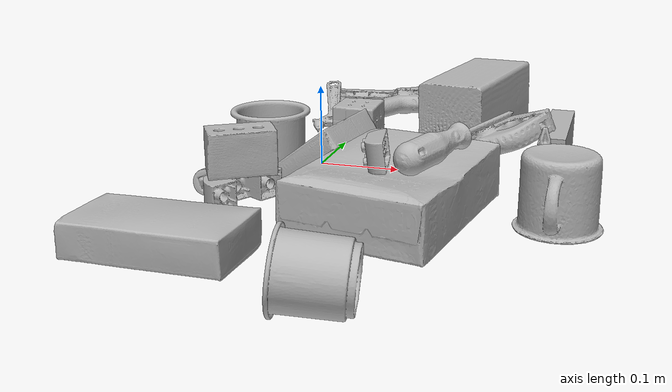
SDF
<sdf version="1.4">
  <world name="default">
    <light name="light1" type="point">
      <pose>0 0 1 0 0 0</pose>
      <diffuse>3 3 3 1</diffuse>
      <specular>3 3 3 1</specular>
    </light>
    <light name="light2" type="point">
      <pose>0 0.5 2 0 0 0</pose>
      <diffuse>1 1 1 1</diffuse>
      <specular>1 1 1 1</specular>
    </light>
    <light name="light3" type="point">
      <pose>0 0.5 2 0 0 0</pose>
      <diffuse>3 3 3 1</diffuse>
      <specular>3 3 3 1</specular>
    </light>
    <scene>
      <ambient>0.7 0.7 0.7</ambient>
    </scene>
    <model name="box21">
      <link name="link_box21">
        <collision name="default">
          <geometry>
            <mesh>
              <uri>model://cracker_box/collision_meshes/collision.obj</uri>
              <scale>1.0 1.0 1.0</scale>
            </mesh>
          </geometry>
          <surface>
            <friction>
              <ode>
                <mu>0.5</mu>
                <mu2>0.5</mu2>
              </ode>
            </friction>
          <contact>
        <ode>
            <max_vel>0</max_vel>
            <min_depth>0.0001</min_depth>
            <kp>1e8</kp>
        </ode>
    </contact></surface>
        </collision>
        <visual name="default">
          <geometry>
            <mesh>
              <uri>model://cracker_box/visual_meshes/visual.dae</uri>
              <scale>1.0 1.0 1.0</scale>
            </mesh>
          </geometry>
        </visual>
        <inertial>
          <mass>1.391977071762085</mass>
          <pose>0.0009464159375056624 0.0002543424488976598 -0.0017029533628374338 -0.000316207597302205 -0.011106489600460226 0.002546794768991959</pose>
          <inertia>
            <ixx>0.0035405685</ixx>
            <iyy>0.0058461735</iyy>
            <izz>0.008343027</izz>
            <ixy>0</ixy>
            <ixz>0</ixz>
            <iyz>0</iyz>
          </inertia>
        </inertial>
      </link>
      <pose>0.13931044936180115 -0.1717512309551239 0.036481823772192 -0.011790720072276155 -0.007366500454985928 1.3838491683076666</pose>
    </model>
    <model name="box22">
      <link name="link_box22">
        <collision name="default">
          <geometry>
            <mesh>
              <uri>model://pudding_box/collision_meshes/collision.obj</uri>
              <scale>1.0 1.0 1.0</scale>
            </mesh>
          </geometry>
          <surface>
            <friction>
              <ode>
                <mu>0.5</mu>
                <mu2>0.5</mu2>
              </ode>
            </friction>
          <contact>
        <ode>
            <max_vel>0</max_vel>
            <min_depth>0.0001</min_depth>
            <kp>1e8</kp>
        </ode>
    </contact></surface>
        </collision>
        <visual name="default">
          <geometry>
            <mesh>
              <uri>model://pudding_box/visual_meshes/visual.dae</uri>
              <scale>1.0 1.0 1.0</scale>
            </mesh>
          </geometry>
        </visual>
        <inertial>
          <mass>0.30066633224487305</mass>
          <pose>0.0004894821904599667 0.0008067885646596551 -0.0005188827635720372 0.005213102250656644 -0.006603798267444238 0.020079828885202117</pose>
          <inertia>
            <ixx>0.0003398878</ixx>
            <iyy>0.00022867892</iyy>
            <izz>0.00050193316</izz>
            <ixy>0</ixy>
            <ixz>0</ixz>
            <iyz>0</iyz>
          </inertia>
        </inertial>
      </link>
      <pose>0.029164502397179604 -0.06491947174072266 0.03965303674340248 -0.0031040134765311328 -0.6350196208298066 -0.16355487293340515</pose>
    </model>
    <model name="box23">
      <link name="link_box23">
        <collision name="default">
          <geometry>
            <mesh>
              <uri>model://rubiks_cube/collision_meshes/collision.obj</uri>
              <scale>1.0 1.0 1.0</scale>
            </mesh>
          </geometry>
          <surface>
            <friction>
              <ode>
                <mu>0.5</mu>
                <mu2>0.5</mu2>
              </ode>
            </friction>
          <contact>
        <ode>
            <max_vel>0</max_vel>
            <min_depth>0.0001</min_depth>
            <kp>1e8</kp>
        </ode>
    </contact></surface>
        </collision>
        <visual name="default">
          <geometry>
            <mesh>
              <uri>model://rubiks_cube/visual_meshes/visual.dae</uri>
              <scale>1.0 1.0 1.0</scale>
            </mesh>
          </geometry>
        </visual>
        <inertial>
          <mass>0.26383036375045776</mass>
          <pose>2.6721041649580002e-05 5.256966323941015e-05 -7.264316082000732e-06 -0.054671492146459166 -0.0981403456898064 -0.03445706250673431</pose>
          <inertia>
            <ixx>0.000145784</ixx>
            <iyy>0.00014510413</iyy>
            <izz>0.00014699204</izz>
            <ixy>0</ixy>
            <ixz>0</ixz>
            <iyz>0</iyz>
          </inertia>
        </inertial>
      </link>
      <pose>0.02013634517788887 0.09658496826887131 0.0292618740350008 1.2514847017519408 1.5373780089115743 1.2628266864931124</pose>
    </model>
    <model name="cup1">
      <link name="link_cup1">
        <collision name="default">
          <geometry>
            <mesh>
              <uri>model://i_cups/collision_meshes/collision.obj</uri>
              <scale>1.0 1.0 1.0</scale>
            </mesh>
          </geometry>
          <surface>
            <friction>
              <ode>
                <mu>0.5</mu>
                <mu2>0.5</mu2>
              </ode>
            </friction>
          <contact>
        <ode>
            <max_vel>0</max_vel>
            <min_depth>0.0001</min_depth>
            <kp>1e8</kp>
        </ode>
    </contact></surface>
        </collision>
        <visual name="default">
          <geometry>
            <mesh>
              <uri>model://i_cups/visual_meshes/visual.dae</uri>
              <scale>1.0 1.0 1.0</scale>
            </mesh>
          </geometry>
        </visual>
        <inertial>
          <mass>0.07817669957876205</mass>
          <pose>0.00011240140884183347 0.00016797371790744364 -0.0008579030982218683 -0.02898336998566683 -0.039872909189422004 -0.34590568894983</pose>
          <inertia>
            <ixx>0.000108236774</ixx>
            <iyy>0.000109190434</iyy>
            <izz>0.00012097212</izz>
            <ixy>0</ixy>
            <ixz>0</ixz>
            <iyz>0</iyz>
          </inertia>
        </inertial>
      </link>
      <pose>-0.0545831173658371 -0.0332334041595459 0.0377768836915493 0.0017343742389609876 -0.0064995050094820836 0.4574599276043763</pose>
    </model>
    <model name="cup2">
      <link name="link_cup2">
        <collision name="default">
          <geometry>
            <mesh>
              <uri>model://f_cups/collision_meshes/collision.obj</uri>
              <scale>1.0 1.0 1.0</scale>
            </mesh>
          </geometry>
          <surface>
            <friction>
              <ode>
                <mu>0.5</mu>
                <mu2>0.5</mu2>
              </ode>
            </friction>
          <contact>
        <ode>
            <max_vel>0</max_vel>
            <min_depth>0.0001</min_depth>
            <kp>1e8</kp>
        </ode>
    </contact></surface>
        </collision>
        <visual name="default">
          <geometry>
            <mesh>
              <uri>model://f_cups/visual_meshes/visual.dae</uri>
              <scale>1.0 1.0 1.0</scale>
            </mesh>
          </geometry>
        </visual>
        <inertial>
          <mass>0.06179655343294144</mass>
          <pose>-0.003171469084918499 -0.0006240077782422304 -0.0036555363330990076 0.786228783809594 -0.26079147583364887 -0.18237327348602217</pose>
          <inertia>
            <ixx>5.8090412e-05</ixx>
            <iyy>6.0937502e-05</iyy>
            <izz>6.3437656e-05</izz>
            <ixy>0</ixy>
            <ixz>0</ixz>
            <iyz>0</iyz>
          </inertia>
        </inertial>
      </link>
      <pose>0.13493002951145172 -0.4064180552959442 0.037275124341249466 -1.2232358676889343 -1.3051812873745081 1.4319875303587484</pose>
    </model>
    <model name="box11">
      <link name="link_box11">
        <collision name="default">
          <geometry>
            <mesh>
              <uri>model://jenga/collision_meshes/collision.obj</uri>
              <scale>1.0 1.0 1.0</scale>
            </mesh>
          </geometry>
          <surface>
            <friction>
              <ode>
                <mu>0.5</mu>
                <mu2>0.5</mu2>
              </ode>
            </friction>
          <contact>
        <ode>
            <max_vel>0</max_vel>
            <min_depth>0.0001</min_depth>
            <kp>1e8</kp>
        </ode>
    </contact></surface>
        </collision>
        <visual name="default">
          <geometry>
            <mesh>
              <uri>model://jenga/visual_meshes/visual.dae</uri>
              <scale>1.0 1.0 1.0</scale>
            </mesh>
          </geometry>
        </visual>
        <inertial>
          <mass>0.2841220796108246</mass>
          <pose>-2.5028555228345795e-07 -0.00010250010382151231 -4.0923401684267446e-05 0.0 -7.34215461761844e-07 0.0</pose>
          <inertia>
            <ixx>7.8623474e-05</ixx>
            <iyy>0.00053275056</iyy>
            <izz>0.0005687565</izz>
            <ixy>0</ixy>
            <ixz>0</ixz>
            <iyz>0</iyz>
          </inertia>
        </inertial>
      </link>
      <pose>0.28496620059013367 0.0952283963561058 0.02470199018716812 1.5774851514523212 1.5317706841004541e-06 1.5707927946080449</pose>
    </model>
    <model name="box12">
      <link name="link_box12">
        <collision name="default">
          <geometry>
            <mesh>
              <uri>model://wood_block/collision_meshes/collision.obj</uri>
              <scale>1.0 1.0 1.0</scale>
            </mesh>
          </geometry>
          <surface>
            <friction>
              <ode>
                <mu>0.5</mu>
                <mu2>0.5</mu2>
              </ode>
            </friction>
          <contact>
        <ode>
            <max_vel>0</max_vel>
            <min_depth>0.0001</min_depth>
            <kp>1e8</kp>
        </ode>
    </contact></surface>
        </collision>
        <visual name="default">
          <geometry>
            <mesh>
              <uri>model://wood_block/visual_meshes/visual.dae</uri>
              <scale>1.0 1.0 1.0</scale>
            </mesh>
          </geometry>
        </visual>
        <inertial>
          <mass>1.792885661125183</mass>
          <pose>-5.813315510749817e-06 -0.0005708095268346369 0.0002640858292579651 -0.0522099864925601 -0.005192695938411627 -0.006861379223067069</pose>
          <inertia>
            <ixx>0.0023991528</ixx>
            <iyy>0.007578924</iyy>
            <izz>0.007550574</izz>
            <ixy>0</ixy>
            <ixz>0</ixz>
            <iyz>0</iyz>
          </inertia>
        </inertial>
      </link>
      <pose>0.16199059784412384 0.20167571306228638 0.044277388602495193 -1.5548836392393572 0.004819292238170427 -1.7624662718872368</pose>
    </model>
    <model name="box13">
      <link name="link_box13">
        <collision name="default">
          <geometry>
            <mesh>
              <uri>model://sugar_box/collision_meshes/collision.obj</uri>
              <scale>1.0 1.0 1.0</scale>
            </mesh>
          </geometry>
          <surface>
            <friction>
              <ode>
                <mu>0.5</mu>
                <mu2>0.5</mu2>
              </ode>
            </friction>
          <contact>
        <ode>
            <max_vel>0</max_vel>
            <min_depth>0.0001</min_depth>
            <kp>1e8</kp>
        </ode>
    </contact></surface>
        </collision>
        <visual name="default">
          <geometry>
            <mesh>
              <uri>model://sugar_box/visual_meshes/visual.dae</uri>
              <scale>1.0 1.0 1.0</scale>
            </mesh>
          </geometry>
        </visual>
        <inertial>
          <mass>0.8825364708900452</mass>
          <pose>0.0010343727190047503 3.8491099985549226e-05 -0.00036364805418998003 -0.0004046260965456432 0.0010506635219437153 0.002615379021860657</pose>
          <inertia>
            <ixx>0.0007353271</ixx>
            <iyy>0.0023767278</iyy>
            <izz>0.002845227</izz>
            <ixy>0</ixy>
            <ixz>0</ixz>
            <iyz>0</iyz>
          </inertia>
        </inertial>
      </link>
      <pose>-0.05059383064508438 -0.32763177156448364 0.022798605263233185 0.0007759716208385282 -0.023433479439042382 -0.049515013452750056</pose>
    </model>
    <model name="box14">
      <link name="link_box14">
        <collision name="default">
          <geometry>
            <mesh>
              <uri>model://gelatin_box/collision_meshes/collision.obj</uri>
              <scale>1.0 1.0 1.0</scale>
            </mesh>
          </geometry>
          <surface>
            <friction>
              <ode>
                <mu>0.5</mu>
                <mu2>0.5</mu2>
              </ode>
            </friction>
          <contact>
        <ode>
            <max_vel>0</max_vel>
            <min_depth>0.0001</min_depth>
            <kp>1e8</kp>
        </ode>
    </contact></surface>
        </collision>
        <visual name="default">
          <geometry>
            <mesh>
              <uri>model://gelatin_box/visual_meshes/visual.dae</uri>
              <scale>1.0 1.0 1.0</scale>
            </mesh>
          </geometry>
        </visual>
        <inertial>
          <mass>0.13771659135818481</mass>
          <pose>0.0004319618456065655 0.00011156871914863586 -0.0003640321083366871 -0.0010503722043797578 -0.004755819155943452 0.016440555746729004</pose>
          <inertia>
            <ixx>9.721668e-05</ixx>
            <iyy>6.944137e-05</iyy>
            <izz>0.00014798543</izz>
            <ixy>0</ixy>
            <ixz>0</ixz>
            <iyz>0</iyz>
          </inertia>
        </inertial>
      </link>
      <pose>0.09479664266109467 -0.014854519627988338 0.015134434215724468 3.0955798620430737 -0.005542439810046605 1.618884078281239</pose>
    </model>
    <model name="cup15">
      <link name="link_cup15">
        <collision name="default">
          <geometry>
            <mesh>
              <uri>model://mug/collision_meshes/collision.obj</uri>
              <scale>1.0 1.0 1.0</scale>
            </mesh>
          </geometry>
          <surface>
            <friction>
              <ode>
                <mu>0.5</mu>
                <mu2>0.5</mu2>
              </ode>
            </friction>
          <contact>
        <ode>
            <max_vel>0</max_vel>
            <min_depth>0.0001</min_depth>
            <kp>1e8</kp>
        </ode>
    </contact></surface>
        </collision>
        <visual name="default">
          <geometry>
            <mesh>
              <uri>model://mug/visual_meshes/visual.dae</uri>
              <scale>1.0 1.0 1.0</scale>
            </mesh>
          </geometry>
        </visual>
        <inertial>
          <mass>0.09286905825138092</mass>
          <pose>0.009571668691933155 0.0008143252343870699 -0.010947328992187977 -0.12983168029791675 0.08737751579099198 0.05507277032354666</pose>
          <inertia>
            <ixx>9.2248694e-05</ixx>
            <iyy>0.00010303637</iyy>
            <izz>0.00011916295</izz>
            <ixy>0</ixy>
            <ixz>0</ixz>
            <iyz>0</iyz>
          </inertia>
        </inertial>
      </link>
      <pose>0.30668559670448303 -0.1578642576932907 0.04095802456140518 3.141592615553511 1.6404248352013167e-08 1.5503157714665512</pose>
    </model>
    <model name="toy1">
      <link name="link_toy1">
        <collision name="default">
          <geometry>
            <mesh>
              <uri>model://e_toy_airplane/collision_meshes/collision.obj</uri>
              <scale>1.0 1.0 1.0</scale>
            </mesh>
          </geometry>
          <surface>
            <friction>
              <ode>
                <mu>0.5</mu>
                <mu2>0.5</mu2>
              </ode>
            </friction>
          <contact>
        <ode>
            <max_vel>0</max_vel>
            <min_depth>0.0001</min_depth>
            <kp>1e8</kp>
        </ode>
    </contact></surface>
        </collision>
        <visual name="default">
          <geometry>
            <mesh>
              <uri>model://e_toy_airplane/visual_meshes/visual.dae</uri>
              <scale>1.0 1.0 1.0</scale>
            </mesh>
          </geometry>
        </visual>
        <inertial>
          <mass>0.023911256343126297</mass>
          <pose>0.00011740469199139625 -2.2482965505332686e-05 -0.011187205091118813 0.005518515901869279 0.009228280443904262 0.15041685177791278</pose>
          <inertia>
            <ixx>7.297989e-06</ixx>
            <iyy>7.223337e-06</iyy>
            <izz>2.1933329e-06</izz>
            <ixy>0</ixy>
            <ixz>0</ixz>
            <iyz>0</iyz>
          </inertia>
        </inertial>
      </link>
      <pose>-0.08446027338504791 -0.1285305917263031 0.013162095099687576 1.7516775109243823 0.7480973455244497 -3.0042224554558494</pose>
    </model>
    <model name="toy2">
      <link name="link_toy2">
        <collision name="default">
          <geometry>
            <mesh>
              <uri>model://e_lego_duplo/collision_meshes/collision.obj</uri>
              <scale>1.0 1.0 1.0</scale>
            </mesh>
          </geometry>
          <surface>
            <friction>
              <ode>
                <mu>0.5</mu>
                <mu2>0.5</mu2>
              </ode>
            </friction>
          <contact>
        <ode>
            <max_vel>0</max_vel>
            <min_depth>0.0001</min_depth>
            <kp>1e8</kp>
        </ode>
    </contact></surface>
        </collision>
        <visual name="default">
          <geometry>
            <mesh>
              <uri>model://e_lego_duplo/visual_meshes/visual.dae</uri>
              <scale>1.0 1.0 1.0</scale>
            </mesh>
          </geometry>
        </visual>
        <inertial>
          <mass>0.11075761169195175</mass>
          <pose>0.00032560486579313874 0.0002348541165702045 0.0019521445501595736 -0.02256776115193108 -6.825012723321977e-05 -0.007625153470106003</pose>
          <inertia>
            <ixx>2.3096625e-05</ixx>
            <iyy>9.479449e-05</iyy>
            <izz>9.231077e-05</izz>
            <ixy>0</ixy>
            <ixz>0</ixz>
            <iyz>0</iyz>
          </inertia>
        </inertial>
      </link>
      <pose>-0.04456254467368126 -0.161382794380188 0.01651391200721264 -1.568882787547153 0.00463518680962624 1.060759050029142</pose>
    </model>
    <model name="toy3">
      <link name="link_toy3">
        <collision name="default">
          <geometry>
            <mesh>
              <uri>model://foam_brick/collision_meshes/collision.obj</uri>
              <scale>1.0 1.0 1.0</scale>
            </mesh>
          </geometry>
          <surface>
            <friction>
              <ode>
                <mu>0.5</mu>
                <mu2>0.5</mu2>
              </ode>
            </friction>
          <contact>
        <ode>
            <max_vel>0</max_vel>
            <min_depth>0.0001</min_depth>
            <kp>1e8</kp>
        </ode>
    </contact></surface>
        </collision>
        <visual name="default">
          <geometry>
            <mesh>
              <uri>model://foam_brick/visual_meshes/visual.dae</uri>
              <scale>1.0 1.0 1.0</scale>
            </mesh>
          </geometry>
        </visual>
        <inertial>
          <mass>0.18736568093299866</mass>
          <pose>-0.0002522472059354186 0.0003458441933616996 -0.0002532101352699101 -0.2940186982087205 0.017274432871393446 -0.000744985669109422</pose>
          <inertia>
            <ixx>8.184482e-05</ixx>
            <iyy>0.00013066948</iyy>
            <izz>0.00013233014</izz>
            <ixy>0</ixy>
            <ixz>0</ixz>
            <iyz>0</iyz>
          </inertia>
        </inertial>
      </link>
      <pose>-0.04150647297501564 -0.15696831047534943 0.05851713567972183 0.020171767771631682 0.008281500014778759 -2.5990596491742766</pose>
    </model>
    <model name="toy4">
      <link name="link_toy4">
        <collision name="default">
          <geometry>
            <mesh>
              <uri>model://b_lego_duplo/collision_meshes/collision.obj</uri>
              <scale>1.0 1.0 1.0</scale>
            </mesh>
          </geometry>
          <surface>
            <friction>
              <ode>
                <mu>0.5</mu>
                <mu2>0.5</mu2>
              </ode>
            </friction>
          <contact>
        <ode>
            <max_vel>0</max_vel>
            <min_depth>0.0001</min_depth>
            <kp>1e8</kp>
        </ode>
    </contact></surface>
        </collision>
        <visual name="default">
          <geometry>
            <mesh>
              <uri>model://b_lego_duplo/visual_meshes/visual.dae</uri>
              <scale>1.0 1.0 1.0</scale>
            </mesh>
          </geometry>
        </visual>
        <inertial>
          <mass>0.025353357195854187</mass>
          <pose>-0.00011053043272113428 -9.152237907983363e-06 0.001929429010488093 -0.03749469050897604 -0.02635423063131295 0.4518929125976256</pose>
          <inertia>
            <ixx>5.188755e-06</ixx>
            <iyy>5.223636e-06</iyy>
            <izz>4.623011e-06</izz>
            <ixy>0</ixy>
            <ixz>0</ixz>
            <iyz>0</iyz>
          </inertia>
        </inertial>
      </link>
      <pose>-0.042276956140995026 -0.0405990332365036 0.025043508037924767 0.4269369090918173 1.5638869301338443 0.008274156845524013</pose>
    </model>
    <model name="toy5">
      <link name="link_toy5">
        <collision name="default">
          <geometry>
            <mesh>
              <uri>model://d_toy_airplane/collision_meshes/collision.obj</uri>
              <scale>1.0 1.0 1.0</scale>
            </mesh>
          </geometry>
          <surface>
            <friction>
              <ode>
                <mu>0.5</mu>
                <mu2>0.5</mu2>
              </ode>
            </friction>
          <contact>
        <ode>
            <max_vel>0</max_vel>
            <min_depth>0.0001</min_depth>
            <kp>1e8</kp>
        </ode>
    </contact></surface>
        </collision>
        <visual name="default">
          <geometry>
            <mesh>
              <uri>model://d_toy_airplane/visual_meshes/visual.dae</uri>
              <scale>1.0 1.0 1.0</scale>
            </mesh>
          </geometry>
        </visual>
        <inertial>
          <mass>0.012228579260408878</mass>
          <pose>9.410289931111038e-05 -5.8093195548281074e-05 -0.011728097684681416 0.00026677116185868234 0.004678984415060646 0.5194210089241819</pose>
          <inertia>
            <ixx>3.6658907e-06</ixx>
            <iyy>3.6686554e-06</iyy>
            <izz>1.1067563e-06</izz>
            <ixy>0</ixy>
            <ixz>0</ixz>
            <iyz>0</iyz>
          </inertia>
        </inertial>
      </link>
      <pose>0.27667665481567383 0.006258659064769745 0.03333877772092819 -3.8108164651297034e-05 -0.00017968131569884207 1.8157432438753507</pose>
    </model>
    <model name="toy6">
      <link name="link_toy6">
        <collision name="default">
          <geometry>
            <mesh>
              <uri>model://a_lego_duplo/collision_meshes/collision.obj</uri>
              <scale>1.0 1.0 1.0</scale>
            </mesh>
          </geometry>
          <surface>
            <friction>
              <ode>
                <mu>0.5</mu>
                <mu2>0.5</mu2>
              </ode>
            </friction>
          <contact>
        <ode>
            <max_vel>0</max_vel>
            <min_depth>0.0001</min_depth>
            <kp>1e8</kp>
        </ode>
    </contact></surface>
        </collision>
        <visual name="default">
          <geometry>
            <mesh>
              <uri>model://a_lego_duplo/visual_meshes/visual.dae</uri>
              <scale>1.0 1.0 1.0</scale>
            </mesh>
          </geometry>
        </visual>
        <inertial>
          <mass>0.012199957855045795</mass>
          <pose>-0.00011337617615936324 0.00018517585704103112 0.0003692606114782393 -0.014116995063493705 -0.0001256559143483996 6.140869386576653e-05</pose>
          <inertia>
            <ixx>1.564132e-06</ixx>
            <iyy>3.5039989e-06</iyy>
            <izz>4.340482e-06</izz>
            <ixy>0</ixy>
            <ixz>0</ixz>
            <iyz>0</iyz>
          </inertia>
        </inertial>
      </link>
      <pose>0.1266443431377411 -0.1998991072177887 0.08258146792650223 1.7044306223584542 -0.03703971282179185 -1.3765983540640454</pose>
    </model>
    <model name="hardware1">
      <link name="link_hardware1">
        <collision name="default">
          <geometry>
            <mesh>
              <uri>model://phillips_screwdriver/collision_meshes/collision.obj</uri>
              <scale>1.0 1.0 1.0</scale>
            </mesh>
          </geometry>
          <surface>
            <friction>
              <ode>
                <mu>0.5</mu>
                <mu2>0.5</mu2>
              </ode>
            </friction>
          <contact>
        <ode>
            <max_vel>0</max_vel>
            <min_depth>0.0001</min_depth>
            <kp>1e8</kp>
        </ode>
    </contact></surface>
        </collision>
        <visual name="default">
          <geometry>
            <mesh>
              <uri>model://phillips_screwdriver/visual_meshes/visual.dae</uri>
              <scale>1.0 1.0 1.0</scale>
            </mesh>
          </geometry>
        </visual>
        <inertial>
          <mass>0.06495495140552521</mass>
          <pose>-0.04777183011174202 0.0010362302418798208 -0.00045555501128546894 -0.1571888451297522 0.005850998841919991 -0.0021567342335393844</pose>
          <inertia>
            <ixx>7.63154e-06</ixx>
            <iyy>9.568614e-05</iyy>
            <izz>9.576745e-05</izz>
            <ixy>0</ixy>
            <ixz>0</ixz>
            <iyz>0</iyz>
          </inertia>
        </inertial>
      </link>
      <pose>0.19913291931152344 -0.1293741911649704 0.08523949235677719 2.441551781134256 -0.042048042731650956 1.1765706723192972</pose>
    </model>
    <model name="hardware2">
      <link name="link_hardware2">
        <collision name="default">
          <geometry>
            <mesh>
              <uri>model://extra_large_clamp/collision_meshes/collision.obj</uri>
              <scale>1.0 1.0 1.0</scale>
            </mesh>
          </geometry>
          <surface>
            <friction>
              <ode>
                <mu>0.5</mu>
                <mu2>0.5</mu2>
              </ode>
            </friction>
          <contact>
        <ode>
            <max_vel>0</max_vel>
            <min_depth>0.0001</min_depth>
            <kp>1e8</kp>
        </ode>
    </contact></surface>
        </collision>
        <visual name="default">
          <geometry>
            <mesh>
              <uri>model://extra_large_clamp/visual_meshes/visual.dae</uri>
              <scale>1.0 1.0 1.0</scale>
            </mesh>
          </geometry>
        </visual>
        <inertial>
          <mass>0.19384004175662994</mass>
          <pose>0.003232018556445837 -7.61538467486389e-05 0.00031721554114483297 0.013786997874205318 -0.000506684650300538 -0.0008936209831217155</pose>
          <inertia>
            <ixx>0.00029460518</ixx>
            <iyy>0.00050721905</iyy>
            <izz>0.0007749263</izz>
            <ixy>0</ixy>
            <ixz>0</ixz>
            <iyz>0</iyz>
          </inertia>
        </inertial>
      </link>
      <pose>0.03499221056699753 0.2905037999153137 0.0183857511729002 3.100711661402561 -0.014461334652610722 0.5644575738471084</pose>
    </model>
    <model name="hardware3">
      <link name="link_hardware3">
        <collision name="default">
          <geometry>
            <mesh>
              <uri>model://large_clamp/collision_meshes/collision.obj</uri>
              <scale>1.0 1.0 1.0</scale>
            </mesh>
          </geometry>
          <surface>
            <friction>
              <ode>
                <mu>0.5</mu>
                <mu2>0.5</mu2>
              </ode>
            </friction>
          <contact>
        <ode>
            <max_vel>0</max_vel>
            <min_depth>0.0001</min_depth>
            <kp>1e8</kp>
        </ode>
    </contact></surface>
        </collision>
        <visual name="default">
          <geometry>
            <mesh>
              <uri>model://large_clamp/visual_meshes/visual.dae</uri>
              <scale>1.0 1.0 1.0</scale>
            </mesh>
          </geometry>
        </visual>
        <inertial>
          <mass>0.09168914705514908</mass>
          <pose>0.006369357462972403 0.0003585686208680272 -0.0001839803735492751 -0.0021330784539622108 0.00967158945845961 0.026633182273159455</pose>
          <inertia>
            <ixx>8.0894904e-05</ixx>
            <iyy>0.00015362375</iyy>
            <izz>0.00022223631</izz>
            <ixy>0</ixy>
            <ixz>0</ixz>
            <iyz>0</iyz>
          </inertia>
        </inertial>
      </link>
      <pose>0.20729687809944153 0.023234160616993904 0.03927960619330406 0.016171883897281553 -0.38179280026063234 0.21442608020028192</pose>
    </model>
    <model name="hardware4">
      <link name="link_hardware4">
        <collision name="default">
          <geometry>
            <mesh>
              <uri>model://adjustable_wrench/collision_meshes/collision.obj</uri>
              <scale>1.0 1.0 1.0</scale>
            </mesh>
          </geometry>
          <surface>
            <friction>
              <ode>
                <mu>0.5</mu>
                <mu2>0.5</mu2>
              </ode>
            </friction>
          <contact>
        <ode>
            <max_vel>0</max_vel>
            <min_depth>0.0001</min_depth>
            <kp>1e8</kp>
        </ode>
    </contact></surface>
        </collision>
        <visual name="default">
          <geometry>
            <mesh>
              <uri>model://adjustable_wrench/visual_meshes/visual.dae</uri>
              <scale>1.0 1.0 1.0</scale>
            </mesh>
          </geometry>
        </visual>
        <inertial>
          <mass>0.03454793244600296</mass>
          <pose>0.03740980476140976 -0.0028968879487365484 -0.001114922808483243 -0.01447336202596381 0.006656025927011416 -0.010954184309206349</pose>
          <inertia>
            <ixx>7.0707333e-06</ixx>
            <iyy>8.275469e-05</iyy>
            <izz>8.944984e-05</izz>
            <ixy>0</ixy>
            <ixz>0</ixz>
            <iyz>0</iyz>
          </inertia>
        </inertial>
      </link>
      <pose>-0.06137746945023537 0.2260119616985321 0.01637866720557213 -3.084682140590609 0.1568942835063219 -1.2383409302242907</pose>
    </model>
  <physics type="ode">
      <max_contacts>50</max_contacts>
      <ode>
        <solver>
          <type>quick</type>
          <iters>75</iters>
        </solver>
        <constraints>
          <contact_max_correcting_vel>0</contact_max_correcting_vel>
          <contact_surface_layer>0</contact_surface_layer>
        </constraints>
      </ode>
    </physics></world>
</sdf>
